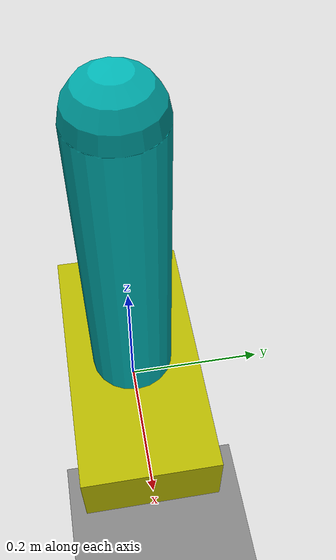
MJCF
<!-- Cartpole Model with Pole Control -->

<mujoco model='test_cartpole'>
  <compiler inertiafromgeom='true' coordinate='local'/>

  <option timestep='0.01'/>

  <worldbody>
    <light name='top' pos='0 0 1.5'/>
    <camera name='fixed' pos='0 -2.5 0' quat='0.707 0.707 0 0'/>
    <geom name='floor' pos='0 0 -1' size='4 4 4' type='plane' />
    <body name='cart' pos='0 0 0'>
      <joint name='slider' type='slide' limited='true' pos='0 0 0' axis='1 0 0' range='-5 5' />
      <geom name='cart' type='box' pos='0 0 0' size='0.2 0.1 0.05' rgba='0.7 0.7 0 1'/>
      <body name='pole' pos='0 0 0'>
        <camera name='pole' pos='0 -2.5 0' quat='0.707 0.707 0 0' />
        <joint name='hinge' type='hinge' pos='0 0 0' axis='0 1 0'/>
        <geom name='cpole' type='capsule' fromto='0 0 0 0 0 0.5' size='0.06 0.001' rgba='0 0.7 0.7 1'/>
      </body>
    </body>
  </worldbody>

  <actuator>
    <motor name='slide' joint='slider' gear='50' ctrllimited='true' ctrlrange='-1 1' />
  </actuator>

</mujoco>
